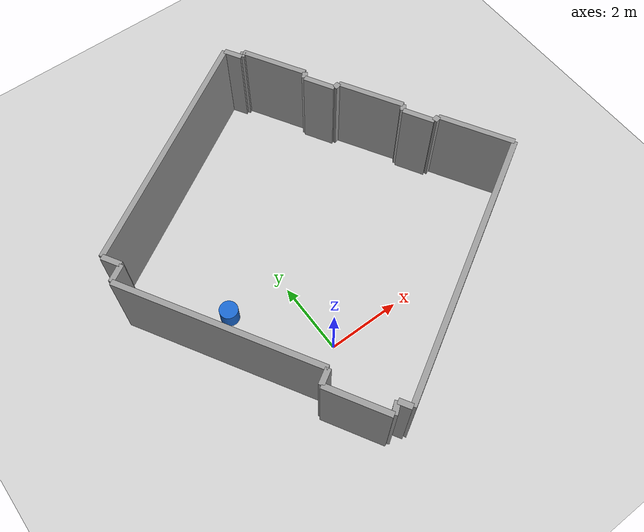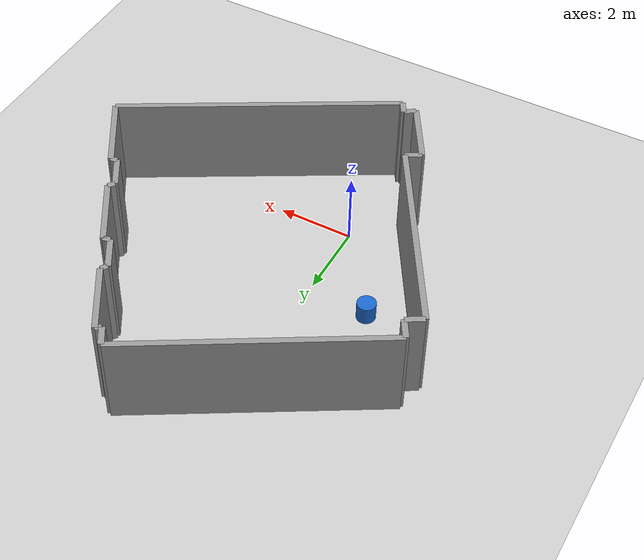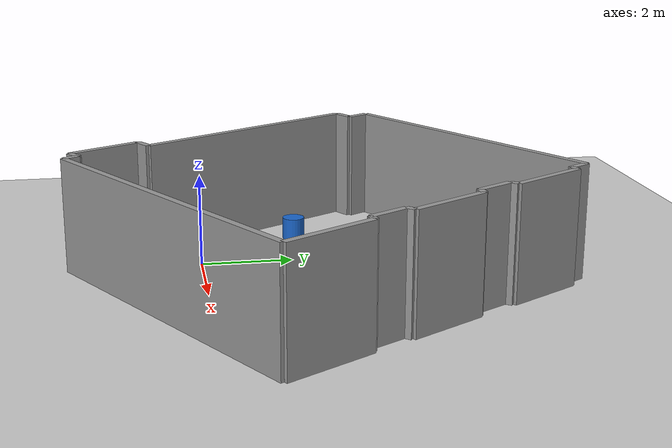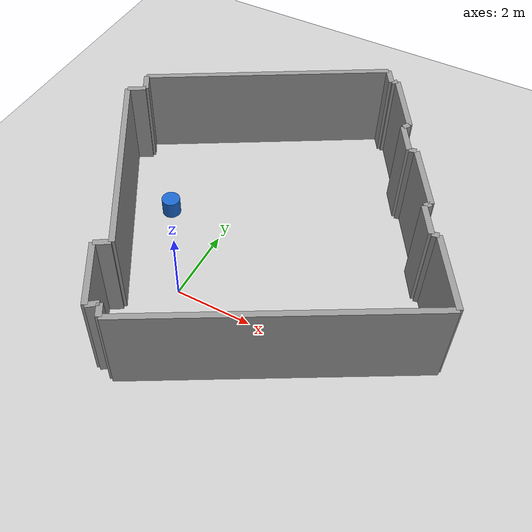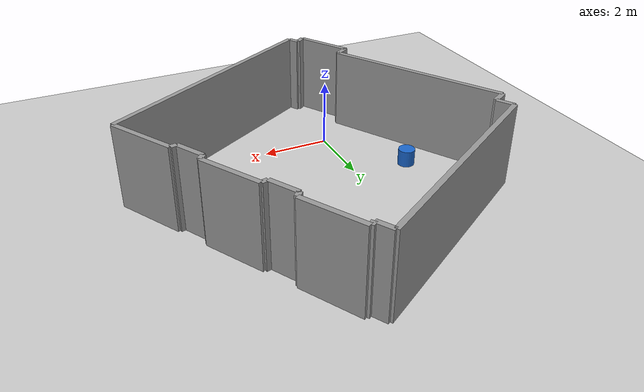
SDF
<sdf version="1.7">
 <world name="default">
  <plugin name="socnav_plugin" filename="libSocNavPlugin.so">
   <robot_name>robot</robot_name>
   <trajectory_file>/home/hunav_gz_classic_ws/src/socnav_gazebo_reproducer/SocNav3_trajectories_labeled/src1/000000001_18f5ff62.json</trajectory_file>
  </plugin>
  <light name="sun" type="directional">
   <pose>0 0 10 0 -0 0</pose>
   <diffuse>0.8 0.8 0.8 1</diffuse>
   <specular>0.2 0.2 0.2 1</specular>
   <attenuation>
    <range>1000</range>
    <constant>0.9</constant>
    <linear>0.01</linear>
    <quadratic>0.001</quadratic>
   </attenuation>
   <direction>-0.5 0.1 -0.9</direction>
   <spot><inner_angle>0</inner_angle><outer_angle>0</outer_angle><falloff>0</falloff></spot>
  </light>
  <model name="ground_plane">
   <static>1</static>
   <link name="link">
    <collision name="collision">
     <geometry><plane><normal>0 0 1</normal><size>100 100</size></plane></geometry>
     <surface><friction><ode><mu>100</mu><mu2>50</mu2></ode></friction></surface>
    </collision>
    <visual name="visual">
     <cast_shadows>0</cast_shadows>
     <geometry><plane><normal>0 0 1</normal><size>100 100</size></plane></geometry>
     <material>
      <script>
       <visual name="robot_top">
        <pose>0 0 0.29 0 0 0</pose>
        <geometry><cylinder><radius>0.18</radius><length>0.08</length></cylinder></geometry>
        <material><ambient>0.04 0.08 0.12 1</ambient><diffuse>0.04 0.08 0.12 1</diffuse></material>
       </visual>
       <visual name="robot_front">
        <pose>0.22 0 0.22 0 0 0</pose>
        <geometry><box><size>0.12 0.16 0.12</size></box></geometry>
        <material><ambient>0.9 0.12 0.08 1</ambient><diffuse>0.9 0.12 0.08 1</diffuse></material>
       </visual>
       <visual name="robot_sensor">
        <pose>0 0 0.39 0 0 0</pose>
        <geometry><cylinder><radius>0.035</radius><length>0.12</length></cylinder></geometry>
        <material><ambient>0.1 0.9 0.9 1</ambient><diffuse>0.1 0.9 0.9 1</diffuse></material>
       </visual>
       <uri>file://media/materials/scripts/gazebo.material</uri>
       <name>Gazebo/Grey</name>
      </script>
     </material>
    </visual>
   </link>
  </model>
  <gravity>0 0 -9.8</gravity>
  <magnetic_field>6e-06 2.3e-05 -4.2e-05</magnetic_field>
  <atmosphere type="adiabatic"/>
  <physics type="ode">
   <max_step_size>0.001</max_step_size>
   <real_time_factor>1</real_time_factor>
   <real_time_update_rate>1000</real_time_update_rate>
  </physics>
  <scene><ambient>0.4 0.4 0.4 1</ambient><background>0.7 0.7 0.7 1</background><shadows>1</shadows></scene>
  <audio><device>default</device></audio>
  <spherical_coordinates>
   <surface_model>EARTH_WGS84</surface_model>
   <latitude_deg>0</latitude_deg>
   <longitude_deg>0</longitude_deg>
   <elevation>0</elevation>
   <heading_deg>0</heading_deg>
  </spherical_coordinates>
  <model name="robot">
   <pose>-1.63984 2.26482 0.25 1e-06 -1e-06 -1.55171</pose>
   <link name="link">
    <collision name="collision">
     <geometry><cylinder><radius>0.25</radius><length>0.5</length></cylinder></geometry>
    </collision>
    <visual name="visual">
     <geometry><cylinder><radius>0.25</radius><length>0.5</length></cylinder></geometry>
     <material><ambient>0.1 0.4 0.8 1</ambient><diffuse>0.1 0.4 0.8 1</diffuse></material>
    </visual>
    <inertial>
     <inertia><ixx>1</ixx><ixy>0</ixy><ixz>0</ixz><iyy>1</iyy><iyz>0</iyz><izz>1</izz></inertia>
     <mass>1</mass>
    </inertial>
   </link>
  </model>
  <model name="simple_world_test">
   <link name="Wall_0">
    <collision name="Wall_0_Collision">
     <geometry><box><size>1.70816 0.15 2.5</size></box></geometry>
     <pose>0 0 1.25 0 -0 0</pose>
    </collision>
    <visual name="Wall_0_Visual">
     <pose>0 0 1.25 0 -0 0</pose>
     <geometry><box><size>1.70816 0.15 2.5</size></box></geometry>
     <material>
      <script><uri>file://media/materials/scripts/gazebo.material</uri><name>Gazebo/Grey</name></script>
      <ambient>1 1 1 1</ambient>
     </material>
     <meta><layer>0</layer></meta>
    </visual>
    <pose>-0.895 -1.985 0 0 -0 2.10519</pose>
   </link>
   <link name="Wall_1">
    <collision name="Wall_1_Collision">
     <geometry><box><size>0.430465 0.15 2.5</size></box></geometry>
     <pose>0 0 1.25 0 -0 0</pose>
    </collision>
    <visual name="Wall_1_Visual">
     <pose>0 0 1.25 0 -0 0</pose>
     <geometry><box><size>0.430465 0.15 2.5</size></box></geometry>
     <material>
      <script><uri>file://media/materials/scripts/gazebo.material</uri><name>Gazebo/Grey</name></script>
      <ambient>1 1 1 1</ambient>
     </material>
     <meta><layer>0</layer></meta>
    </visual>
    <pose>-1.145 -1.14 0 0 -0 0.536435</pose>
   </link>
   <link name="Wall_2">
    <collision name="Wall_2_Collision">
     <geometry><box><size>5.4669 0.15 2.5</size></box></geometry>
     <pose>0 0 1.25 0 -0 0</pose>
    </collision>
    <visual name="Wall_2_Visual">
     <pose>0 0 1.25 0 -0 0</pose>
     <geometry><box><size>5.4669 0.15 2.5</size></box></geometry>
     <material>
      <script><uri>file://media/materials/scripts/gazebo.material</uri><name>Gazebo/Grey</name></script>
      <ambient>1 1 1 1</ambient>
     </material>
     <meta><layer>0</layer></meta>
    </visual>
    <pose>-2.357 1.3195 0 0 -0 2.10723</pose>
   </link>
   <link name="Wall_3">
    <collision name="Wall_3_Collision">
     <geometry><box><size>0.49073 0.15 2.5</size></box></geometry>
     <pose>0 0 1.25 0 -0 0</pose>
    </collision>
    <visual name="Wall_3_Visual">
     <pose>0 0 1.25 0 -0 0</pose>
     <geometry><box><size>0.49073 0.15 2.5</size></box></geometry>
     <material>
      <script><uri>file://media/materials/scripts/gazebo.material</uri><name>Gazebo/Grey</name></script>
      <ambient>1 1 1 1</ambient>
     </material>
     <meta><layer>0</layer></meta>
    </visual>
    <pose>-3.5431 3.7944 0 0 -0 0.536435</pose>
   </link>
   <link name="Wall_4">
    <collision name="Wall_4_Collision">
     <geometry><box><size>0.529472 0.15 2.5</size></box></geometry>
     <pose>0 0 1.25 0 -0 0</pose>
    </collision>
    <visual name="Wall_4_Visual">
     <pose>0 0 1.25 0 -0 0</pose>
     <geometry><box><size>0.529472 0.15 2.5</size></box></geometry>
     <material>
      <script><uri>file://media/materials/scripts/gazebo.material</uri><name>Gazebo/Grey</name></script>
      <ambient>1 1 1 1</ambient>
     </material>
     <meta><layer>0</layer></meta>
    </visual>
    <pose>-3.4675 4.14735 0 0 -0 2.10723</pose>
   </link>
   <link name="Wall_5">
    <collision name="Wall_5_Collision">
     <geometry><box><size>6.754 0.15 2.5</size></box></geometry>
     <pose>0 0 1.25 0 -0 0</pose>
    </collision>
    <visual name="Wall_5_Visual">
     <pose>0 0 1.25 0 -0 0</pose>
     <geometry><box><size>6.754 0.15 2.5</size></box></geometry>
     <material>
      <script><uri>file://media/materials/scripts/gazebo.material</uri><name>Gazebo/Grey</name></script>
      <ambient>1 1 1 1</ambient>
     </material>
     <meta><layer>0</layer></meta>
    </visual>
    <pose>-0.70235 6.1045 0 0 -0 0.53771</pose>
   </link>
   <link name="Wall_6">
    <collision name="Wall_6_Collision">
     <geometry><box><size>0.503662 0.15 2.5</size></box></geometry>
     <pose>0 0 1.25 0 -0 0</pose>
    </collision>
    <visual name="Wall_6_Visual">
     <pose>0 0 1.25 0 -0 0</pose>
     <geometry><box><size>0.503662 0.15 2.5</size></box></geometry>
     <material>
      <script><uri>file://media/materials/scripts/gazebo.material</uri><name>Gazebo/Grey</name></script>
      <ambient>1 1 1 1</ambient>
     </material>
     <meta><layer>0</layer></meta>
    </visual>
    <pose>2.32865 7.61875 0 0 -0 -1.02581</pose>
   </link>
   <link name="Wall_7">
    <collision name="Wall_7_Collision">
     <geometry><box><size>0.165555 0.15 2.5</size></box></geometry>
     <pose>0 0 1.25 0 -0 0</pose>
    </collision>
    <visual name="Wall_7_Visual">
     <pose>0 0 1.25 0 -0 0</pose>
     <geometry><box><size>0.165555 0.15 2.5</size></box></geometry>
     <material>
      <script><uri>file://media/materials/scripts/gazebo.material</uri><name>Gazebo/Grey</name></script>
      <ambient>1 1 1 1</ambient>
     </material>
     <meta><layer>0</layer></meta>
    </visual>
    <pose>2.52621 7.452 0 0 -0 0.627566</pose>
   </link>
   <link name="Wall_8">
    <collision name="Wall_8_Collision">
     <geometry><box><size>1.81226 0.15 2.5</size></box></geometry>
     <pose>0 0 1.25 0 -0 0</pose>
    </collision>
    <visual name="Wall_8_Visual">
     <pose>0 0 1.25 0 -0 0</pose>
     <geometry><box><size>1.81226 0.15 2.5</size></box></geometry>
     <material>
      <script><uri>file://media/materials/scripts/gazebo.material</uri><name>Gazebo/Grey</name></script>
      <ambient>1 1 1 1</ambient>
     </material>
     <meta><layer>0</layer></meta>
    </visual>
    <pose>3.05613 6.72165 0 0 -0 -1.0346</pose>
   </link>
   <link name="Wall_9">
    <collision name="Wall_9_Collision">
     <geometry><box><size>0.187203 0.15 2.5</size></box></geometry>
     <pose>0 0 1.25 0 -0 0</pose>
    </collision>
    <visual name="Wall_9_Visual">
     <pose>0 0 1.25 0 -0 0</pose>
     <geometry><box><size>0.187203 0.15 2.5</size></box></geometry>
     <material>
      <script><uri>file://media/materials/scripts/gazebo.material</uri><name>Gazebo/Grey</name></script>
      <ambient>1 1 1 1</ambient>
     </material>
     <meta><layer>0</layer></meta>
    </visual>
    <pose>3.45914 5.87076 0 0 -0 -2.26523</pose>
   </link>
   <link name="Wall_10">
    <collision name="Wall_10_Collision">
     <geometry><box><size>0.86094 0.15 2.5</size></box></geometry>
     <pose>0 0 1.25 0 -0 0</pose>
    </collision>
    <visual name="Wall_10_Visual">
     <pose>0 0 1.25 0 -0 0</pose>
     <geometry><box><size>0.86094 0.15 2.5</size></box></geometry>
     <material>
      <script><uri>file://media/materials/scripts/gazebo.material</uri><name>Gazebo/Grey</name></script>
      <ambient>1 1 1 1</ambient>
     </material>
     <meta><layer>0</layer></meta>
    </visual>
    <pose>3.61739 5.42774 0 0 -0 -1.03936</pose>
   </link>
   <link name="Wall_11">
    <collision name="Wall_11_Collision">
     <geometry><box><size>0.187203 0.15 2.5</size></box></geometry>
     <pose>0 0 1.25 0 -0 0</pose>
    </collision>
    <visual name="Wall_11_Visual">
     <pose>0 0 1.25 0 -0 0</pose>
     <geometry><box><size>0.187203 0.15 2.5</size></box></geometry>
     <material>
      <script><uri>file://media/materials/scripts/gazebo.material</uri><name>Gazebo/Grey</name></script>
      <ambient>1 1 1 1</ambient>
     </material>
     <meta><layer>0</layer></meta>
    </visual>
    <pose>3.92734 5.07491 0 0 -0 0.196505</pose>
   </link>
   <link name="Wall_12">
    <collision name="Wall_12_Collision">
     <geometry><box><size>1.80796 0.15 2.5</size></box></geometry>
     <pose>0 0 1.25 0 -0 0</pose>
    </collision>
    <visual name="Wall_12_Visual">
     <pose>0 0 1.25 0 -0 0</pose>
     <geometry><box><size>1.80796 0.15 2.5</size></box></geometry>
     <material>
      <script><uri>file://media/materials/scripts/gazebo.material</uri><name>Gazebo/Grey</name></script>
      <ambient>1 1 1 1</ambient>
     </material>
     <meta><layer>0</layer></meta>
    </visual>
    <pose>4.48299 4.31729 0 0 -0 -1.03198</pose>
   </link>
   <link name="Wall_13">
    <collision name="Wall_13_Collision">
     <geometry><box><size>0.187203 0.15 2.5</size></box></geometry>
     <pose>0 0 1.25 0 -0 0</pose>
    </collision>
    <visual name="Wall_13_Visual">
     <pose>0 0 1.25 0 -0 0</pose>
     <geometry><box><size>0.187203 0.15 2.5</size></box></geometry>
     <material>
      <script><uri>file://media/materials/scripts/gazebo.material</uri><name>Gazebo/Grey</name></script>
      <ambient>1 1 1 1</ambient>
     </material>
     <meta><layer>0</layer></meta>
    </visual>
    <pose>4.88694 3.46947 0 0 -0 -2.26523</pose>
   </link>
   <link name="Wall_14">
    <collision name="Wall_14_Collision">
     <geometry><box><size>0.86094 0.15 2.5</size></box></geometry>
     <pose>0 0 1.25 0 -0 0</pose>
    </collision>
    <visual name="Wall_14_Visual">
     <pose>0 0 1.25 0 -0 0</pose>
     <geometry><box><size>0.86094 0.15 2.5</size></box></geometry>
     <material>
      <script><uri>file://media/materials/scripts/gazebo.material</uri><name>Gazebo/Grey</name></script>
      <ambient>1 1 1 1</ambient>
     </material>
     <meta><layer>0</layer></meta>
    </visual>
    <pose>5.04519 3.02644 0 0 -0 -1.03936</pose>
   </link>
   <link name="Wall_15">
    <collision name="Wall_15_Collision">
     <geometry><box><size>0.173024 0.15 2.5</size></box></geometry>
     <pose>0 0 1.25 0 -0 0</pose>
    </collision>
    <visual name="Wall_15_Visual">
     <pose>0 0 1.25 0 -0 0</pose>
     <geometry><box><size>0.173024 0.15 2.5</size></box></geometry>
     <material>
      <script><uri>file://media/materials/scripts/gazebo.material</uri><name>Gazebo/Grey</name></script>
      <ambient>1 1 1 1</ambient>
     </material>
     <meta><layer>0</layer></meta>
    </visual>
    <pose>5.34805 2.67291 0 0 -0 0.204457</pose>
   </link>
   <link name="Wall_16">
    <collision name="Wall_16_Collision">
     <geometry><box><size>2.04902 0.15 2.5</size></box></geometry>
     <pose>0 0 1.25 0 -0 0</pose>
    </collision>
    <visual name="Wall_16_Visual">
     <pose>0 0 1.25 0 -0 0</pose>
     <geometry><box><size>2.04902 0.15 2.5</size></box></geometry>
     <material>
      <script><uri>file://media/materials/scripts/gazebo.material</uri><name>Gazebo/Grey</name></script>
      <ambient>1 1 1 1</ambient>
     </material>
     <meta><layer>0</layer></meta>
    </visual>
    <pose>5.95821 1.81097 0 0 -0 -1.03226</pose>
   </link>
   <link name="Wall_17">
    <collision name="Wall_17_Collision">
     <geometry><box><size>7.51221 0.15 2.5</size></box></geometry>
     <pose>0 0 1.25 0 -0 0</pose>
    </collision>
    <visual name="Wall_17_Visual">
     <pose>0 0 1.25 0 -0 0</pose>
     <geometry><box><size>7.51221 0.15 2.5</size></box></geometry>
     <material>
      <script><uri>file://media/materials/scripts/gazebo.material</uri><name>Gazebo/Grey</name></script>
      <ambient>1 1 1 1</ambient>
     </material>
     <meta><layer>0</layer></meta>
    </visual>
    <pose>3.23121 -0.94733 0 0 -0 -2.61776</pose>
   </link>
   <link name="Wall_18">
    <collision name="Wall_18_Collision">
     <geometry><box><size>0.352981 0.15 2.5</size></box></geometry>
     <pose>0 0 1.25 0 -0 0</pose>
    </collision>
    <visual name="Wall_18_Visual">
     <pose>0 0 1.25 0 -0 0</pose>
     <geometry><box><size>0.352981 0.15 2.5</size></box></geometry>
     <material>
      <script><uri>file://media/materials/scripts/gazebo.material</uri><name>Gazebo/Grey</name></script>
      <ambient>1 1 1 1</ambient>
     </material>
     <meta><layer>0</layer></meta>
    </visual>
    <pose>-0.11144 -2.67443 0 0 -0 2.10723</pose>
   </link>
   <link name="Wall_19">
    <collision name="Wall_19_Collision">
     <geometry><box><size>0.325062 0.15 2.5</size></box></geometry>
     <pose>0 0 1.25 0 -0 0</pose>
    </collision>
    <visual name="Wall_19_Visual">
     <pose>0 0 1.25 0 -0 0</pose>
     <geometry><box><size>0.325062 0.15 2.5</size></box></geometry>
     <material>
      <script><uri>file://media/materials/scripts/gazebo.material</uri><name>Gazebo/Grey</name></script>
      <ambient>1 1 1 1</ambient>
     </material>
     <meta><layer>0</layer></meta>
    </visual>
    <pose>-0.33082 -2.62136 0 0 -0 -2.48948</pose>
   </link>
   <static>1</static>
  </model>
 </world>
</sdf>
